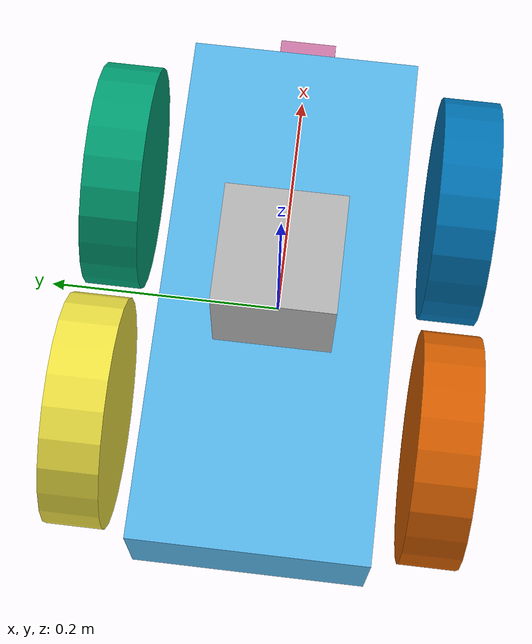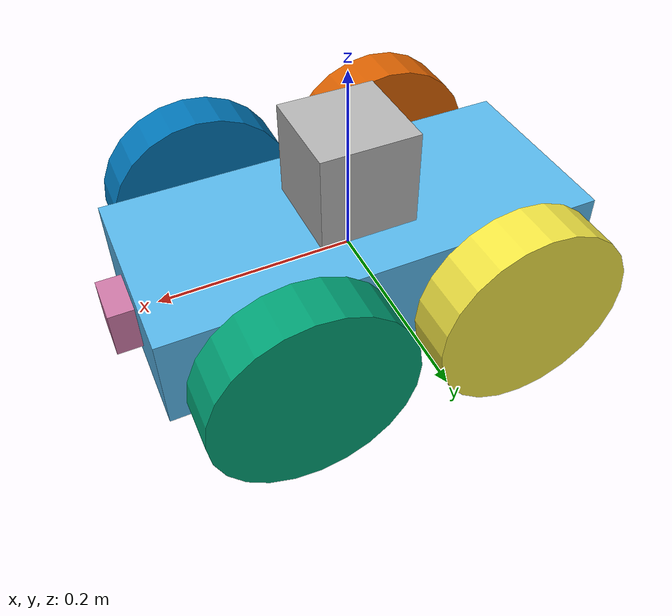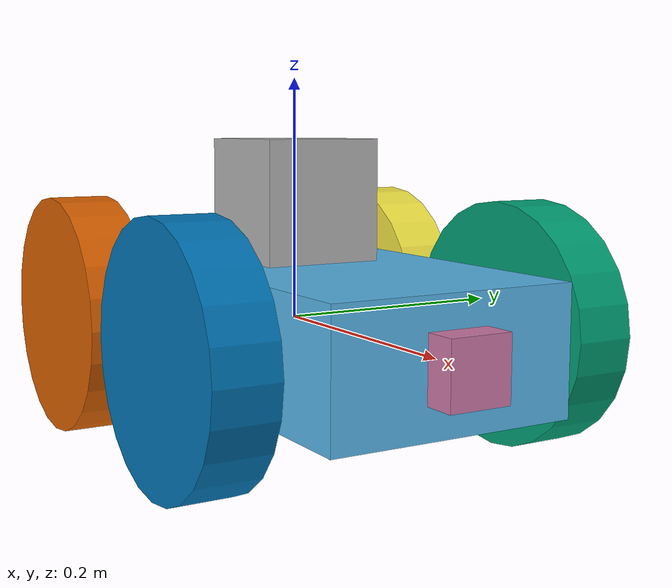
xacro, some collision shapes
<?xml version='1.0'?>

<robot name="my_robot" xmlns:xacro="http://www.ros.org/wiki/xacro">

  <xacro:include filename="$(find my_robot)/urdf/my_robot.gazebo" />

  <xacro:property name="chassis_width" value="0.2" />
  <xacro:property name="chassis_length" value="0.45" />
  <xacro:property name="chassis_height" value="0.1" />
  <xacro:property name="chassis_mass" value="15" />

  <xacro:property name="chassis_ixx" value="${chassis_mass/12.0 * (chassis_height*chassis_height + chassis_width*chassis_width)}" />
  <xacro:property name="chassis_iyy" value="${chassis_mass/12.0 * (chassis_height*chassis_height + chassis_length*chassis_length)}" />
  <xacro:property name="chassis_izz" value="${chassis_mass/12.0 * (chassis_width*chassis_width + chassis_length*chassis_length)}" />

  <xacro:property name="wheel_length" value="0.05" />
  <xacro:property name="wheel_radius" value="0.1" />
  <xacro:property name="wheel_mass" value="5" />
  <xacro:property name="wheel_inertia" value="0.1" />
  <xacro:property name="wheel_offset" value="0.15" />

  <link name="robot_footprint"></link>

  <joint name="robot_footprint_joint" type="fixed">
    <origin xyz="0 0 0" rpy="0 0 0" />
    <parent link="robot_footprint"/>
    <child link="chassis" />
  </joint>

  <link name='chassis'>
    <pose>0 0 0.1 0 0 0</pose>

    <inertial>
      <mass value="${chassis_mass}"/>
      <origin xyz="0.0 0 0" rpy=" 0 0 0"/>
      <inertia
          ixx="${chassis_ixx}" ixy="0" ixz="0"
          iyy="${chassis_iyy}" iyz="0"
          izz="${chassis_izz}"
      />
    </inertial>

    <collision name='collision'>
      <origin xyz="0 0 0" rpy=" 0 0 0"/>
      <geometry>
        <box size="${chassis_length} ${chassis_width} ${chassis_height}"/>
      </geometry>
    </collision>

    <visual name='chassis_visual'>
      <origin xyz="0 0 0" rpy=" 0 0 0"/>
      <geometry>
        <box size="${chassis_length} ${chassis_width} ${chassis_height}"/>
      </geometry>
    </visual>

  </link>

  <link name="left_front_wheel">
    <inertial>
      <mass value="${wheel_mass}"/>
      <origin xyz="0.0 0 0" rpy=" 0 1.5707 1.5707"/>
      <inertia
          ixx="${wheel_inertia}" ixy="0" ixz="0"
          iyy="${wheel_inertia}" iyz="0"
          izz="${wheel_inertia}"
      />
    </inertial>

    <collision name='collision'>
      <origin xyz="0 0 0" rpy=" 0 1.5707 1.5707"/>
      <geometry>
        <cylinder radius="${wheel_radius}" length = "${wheel_length}"/>
      </geometry>
    </collision>

    <visual name='left_front_wheel_visual'>
      <origin xyz="0 0 0" rpy=" 0 1.5707 1.5707"/>
      <geometry>
        <cylinder radius="${wheel_radius}" length = "${wheel_length}"/>
      </geometry>
    </visual>
  </link>

  <link name="left_rear_wheel">
    <inertial>
      <mass value="${wheel_mass}"/>
      <origin xyz="0.0 0 0" rpy=" 0 1.5707 1.5707"/>
      <inertia
          ixx="${wheel_inertia}" ixy="0" ixz="0"
          iyy="${wheel_inertia}" iyz="0"
          izz="${wheel_inertia}"
      />
    </inertial>
    <collision name='collision'>
      <origin xyz="0 0 0" rpy=" 0 1.5707 1.5707"/>
      <geometry>
        <cylinder radius="${wheel_radius}" length = "${wheel_length}"/>
      </geometry>
    </collision>

    <visual name='left_rear_wheel_visual'>
      <origin xyz="0 0 0" rpy=" 0 1.5707 1.5707"/>
      <geometry>
        <cylinder radius="${wheel_radius}" length = "${wheel_length}"/>
      </geometry>
    </visual>
  </link>

  <link name="right_front_wheel">
    <inertial>
      <mass value="${wheel_mass}"/>
      <origin xyz="0.0 0 0" rpy=" 0 1.5707 1.5707"/>
      <inertia
          ixx="${wheel_inertia}" ixy="0" ixz="0"
          iyy="${wheel_inertia}" iyz="0"
          izz="${wheel_inertia}"
      />
    </inertial>

    <collision name='collision'>
      <origin xyz="0 0 0" rpy=" 0 1.5707 1.5707"/>
      <geometry>
        <cylinder radius="${wheel_radius}" length = "${wheel_length}"/>
      </geometry>
    </collision>

    <visual name='right_front_wheel_visual'>
      <origin xyz="0 0 0" rpy=" 0 1.5707 1.5707"/>
      <geometry>
        <cylinder radius="${wheel_radius}" length = "${wheel_length}"/>
      </geometry>
    </visual>
  </link>

  <link name="right_rear_wheel">
    <inertial>
      <mass value="${wheel_mass}"/>
      <origin xyz="0.0 0 0" rpy=" 0 1.5707 1.5707"/>
      <inertia
          ixx="${wheel_inertia}" ixy="0" ixz="0"
          iyy="${wheel_inertia}" iyz="0"
          izz="${wheel_inertia}"
      />
    </inertial>

    <collision name='collision'>
      <origin xyz="0 0 0" rpy=" 0 1.5707 1.5707"/>
      <geometry>
        <cylinder radius="${wheel_radius}" length = "${wheel_length}"/>
      </geometry>
    </collision>

    <visual name='right_rear_wheel_visual'>
      <origin xyz="0 0 0" rpy=" 0 1.5707 1.5707"/>
      <geometry>
        <cylinder radius="${wheel_radius}" length = "${wheel_length}"/>
      </geometry>
    </visual>
  </link>

  <joint type="continuous" name="left_front_wheel_hinge">
    <origin xyz="0.11 ${wheel_offset} 0" rpy="0 0 0"/>
    <child link="left_front_wheel"/>
    <parent link="chassis"/>
    <axis xyz="0 1 0" rpy="0 0 0"/>
    <limit effort="10000" velocity="1000"/>
    <dynamics damping="1.0" friction="1.0"/>
  </joint>

  <joint type="continuous" name="right_front_wheel_hinge">
    <origin xyz="0.11 -${wheel_offset} 0" rpy="0 0 0"/>
    <child link="right_front_wheel"/>
    <parent link="chassis"/>
    <axis xyz="0 1 0" rpy="0 0 0"/>
    <limit effort="10000" velocity="1000"/>
    <dynamics damping="1.0" friction="1.0"/>
  </joint>

  <joint type="continuous" name="left_rear_wheel_hinge">
    <origin xyz="-0.11 ${wheel_offset} 0" rpy="0 0 0"/>
    <child link="left_rear_wheel"/>
    <parent link="chassis"/>
    <axis xyz="0 1 0" rpy="0 0 0"/>
    <limit effort="10000" velocity="1000"/>
    <dynamics damping="1.0" friction="1.0"/>
  </joint>

  <joint type="continuous" name="right_rear_wheel_hinge">
    <origin xyz="-0.11 -${wheel_offset} 0" rpy="0 0 0"/>
    <child link="right_rear_wheel"/>
    <parent link="chassis"/>
    <axis xyz="0 1 0" rpy="0 0 0"/>
    <limit effort="10000" velocity="1000"/>
    <dynamics damping="1.0" friction="1.0"/>
  </joint>

  <link name="camera">
    <inertial>
      <mass value="1e-5"/>
      <origin xyz="0.0 0 0" rpy=" 0 0 0"/>
      <inertia
          ixx="1e-6" ixy="0" ixz="0"
          iyy="1e-6" iyz="0"
          izz="1e-6"
      />
    </inertial>

    <collision name='collision'>
      <origin xyz="0.0 0 0" rpy=" 0 0 0"/>
      <geometry>
         <box size=".05 .05 .05"/>
      </geometry>
    </collision>

    <visual name='camera_visual'>
      <origin xyz="0.0 0 0" rpy=" 0 0 0"/>
      <geometry>
         <box size=".05 .05 .05"/>
      </geometry>
    </visual>
  </link>

  <joint type="fixed" name="camera_joint">
    <origin xyz="0.225 0 0" rpy="0 0 0"/>
    <child link="camera"/>
    <parent link="chassis"/>
    <axis xyz="0 1 0" rpy="0 0 0"/>
  </joint>

  <link name="hokuyo">
    <inertial>
      <mass value="1e-5"/>
      <origin xyz="0 0 0" rpy=" 0 0 0"/>
      <inertia
          ixx="1e-6" ixy="0" ixz="0"
          iyy="1e-6" iyz="0"
          izz="1e-6"
      />
    </inertial>

    <collision name='collision'>
      <origin xyz="0 0 0" rpy=" 0 0 0"/>
      <geometry>
         <box size=".1 .1 .1"/>
      </geometry>
    </collision>

    <visual name='hokuyo_visual'>
      <origin xyz="0 0 0" rpy=" 0 0 0"/>
      <geometry>
         <mesh filename="package://my_robot/meshes/hokuyo.dae"/>
      </geometry>
    </visual>
  </link>

  <joint type="fixed" name="hokuyo_joint">
    <origin xyz="0.0 0 0.1" rpy="0 0 0"/>
    <child link="hokuyo"/>
    <parent link="chassis"/>
    <axis xyz="0 1 0" rpy="0 0 0"/>
  </joint>

</robot>
